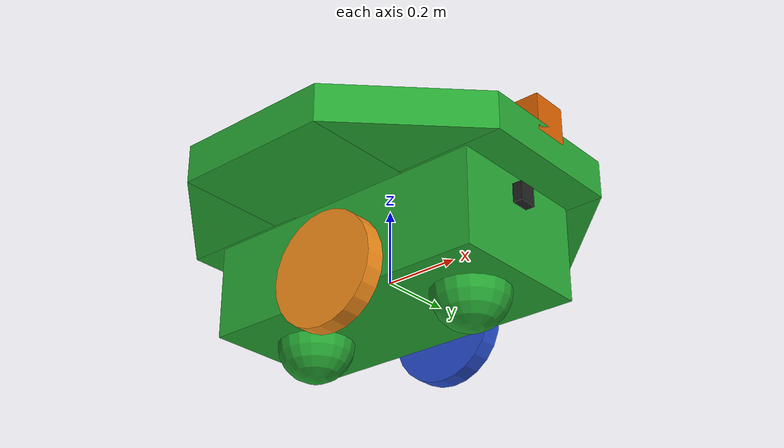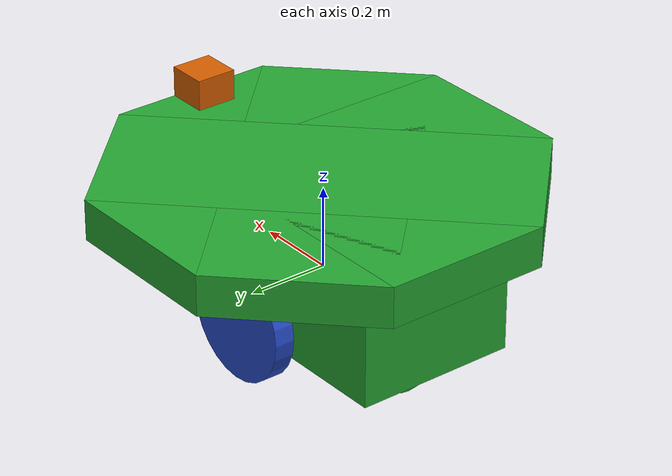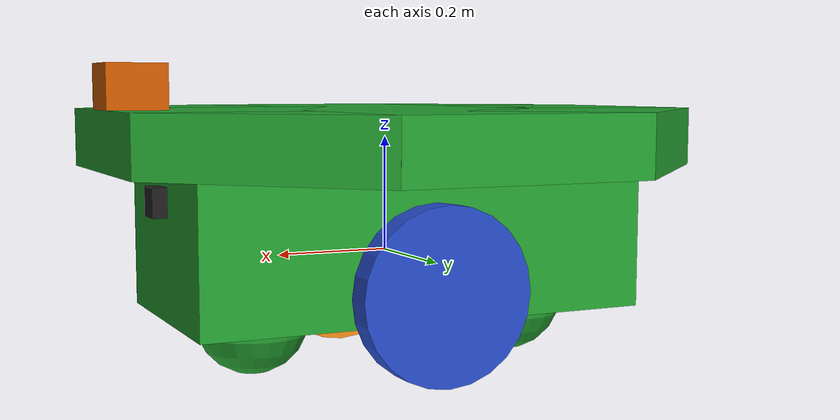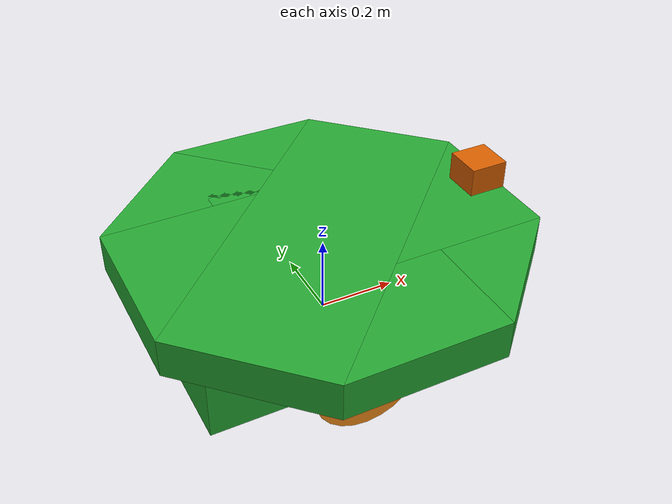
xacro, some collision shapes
<?xml version='1.0'?>

<robot name="my_robot" xmlns:xacro="http://www.ros.org/wiki/xacro">

  <xacro:include filename="$(find my_robot)/urdf/my_robot.gazebo" />

  <link name="robot_footprint"></link>

    <joint name="robot_footprint_joint" type="fixed">
      <origin xyz="0 0 0" rpy="0 0 0" />
      <parent link="robot_footprint"/>
      <child link="chassis" />
    </joint>

  <link name='chassis'>
    <pose>0 0 0.15 0 0 0</pose>

    <inertial>
      <mass value="15.0"/>
      <origin xyz="0.0 0 0" rpy=" 0 0 0"/>
      <inertia
          ixx="0.1" ixy="0" ixz="0"
          iyy="0.1" iyz="0"
          izz="0.1"
      />
    </inertial>

    <!-- can group these rects in a link -->
    <!-- creating an octagon using 4 rectangles -->
    <!-- lifting these rectangles up and adding a box under to connect to wheels (wheel height is .3) -->
      <!-- rectangle 1 -->
      <collision name='collision_box1'>
        <origin xyz="0 0 0.2" rpy=" 0 0 0"/>
        <geometry>
          <box size="1 0.4142 0.1"/>
        </geometry>
      </collision>

      <visual name='chassis_visual_box1'>
        <origin xyz="0 0 0.2" rpy=" 0 0 0"/>
        <geometry>
          <box size="1 0.4142 0.1"/>
        </geometry>
      </visual>

      <!-- rectangle 2 -->
      <collision name='collision_box2'>
        <origin xyz="0 0 0.2" rpy=" 0 0 0"/>
        <geometry>
          <box size="0.4142 1 0.1"/>
        </geometry>
      </collision>

      <visual name='chassis_visual_box2'>
        <origin xyz="0 0 0.2" rpy=" 0 0 0"/>
        <geometry>
          <box size="0.4142 1 0.1"/>
        </geometry>
      </visual>

      <!-- rectangle 3 -->
      <collision name='collision_box3'>
        <origin xyz="0 0 0.2" rpy="0 0 0.7854"/>
        <geometry>
          <box size="0.4142 1 0.1"/>
        </geometry>
      </collision>

      <visual name='chassis_visual_box3'>
        <origin xyz="0 0 0.2" rpy="0 0 0.7854"/>
        <geometry>
          <box size="0.4142 1 0.1"/>
        </geometry>
      </visual>

      <!-- rectangle 4 -->
      <collision name='collision_box4'>
        <origin xyz="0 0 0.2" rpy="0 0 -0.7854"/>
        <geometry>
          <box size="0.4142 1 0.1"/>
        </geometry>
      </collision>

      <visual name='chassis_visual_box4'>
        <origin xyz="0 0 0.2" rpy="0 0 -0.7854"/>
        <geometry>
          <box size="0.4142 1 0.1"/>
        </geometry>
      </visual>

	      <!-- wheel box -->
	      <collision name='collision_wheelbox'>
		<origin xyz="0 0 0.05" rpy="0 0 0"/>
		<geometry>
		  <box size="0.8 0.4 0.3"/>
		</geometry>
	      </collision>

	      <visual name='chassis_visual_wheelbox'>
		<origin xyz="0 0 0.05" rpy="0 0 0"/>
		<geometry>
		  <box size="0.8 0.4 0.3"/>
		</geometry>
	      </visual>

	<!-- casters to stop it falling over -->
	<!-- can't figure out putting weight on the wheels w/out robo tipover-->

	<collision name='back_caster_collision'>
	  <origin xyz="-0.25 0 -0.1" rpy="0 0 0"/>
	  <geometry>
	    <sphere radius="0.0999"/>
	  </geometry>
	</collision>

	<visual name='back_caster_visual'>
	  <origin xyz="-0.25 0 -0.1" rpy=" 0 0 0"/>
	  <geometry>
	    <sphere radius="0.1"/>
	  </geometry>
	</visual>

	<collision name='front_caster_collision'>
	  <origin xyz="0.25 0 -0.1" rpy=" 0 0 0"/>
	  <geometry>
	    <sphere radius="0.0999"/>
	  </geometry>
	</collision>

	<visual name='front_caster_visual'>
	  <origin xyz="0.25 0 -0.1" rpy=" 0 0 0"/>
	  <geometry>
	    <sphere radius="0.1"/>
	  </geometry>
	</visual>

  </link>
  <gazebo reference="chassis">
    <material>Gazebo/Green</material>
  </gazebo>

  <!-- adding wheels -->

  <link name='right_wheel'>
    <inertial name='right_wheel_inertia'>
      <mass value="5.0"/>
      <origin xyz="0 0 0" rpy=" 0 1.57 1.57"/>
      <inertia
          ixx="0.1" ixy="0" ixz="0"
          iyy="0.1" iyz="0"
          izz="0.1"
      />
    </inertial>

    <collision name='right_wheel_collision'>
      <origin xyz="0 0 0" rpy=" 0 1.57 1.57"/>
      <geometry>
        <cylinder length="0.05" radius="0.15"/>
      </geometry>
    </collision>

    <visual name='right_wheel_visual'>
      <origin xyz="0 0 0" rpy=" 0 1.57 1.57"/>
      <geometry>
        <cylinder length="0.05" radius="0.15"/>
      </geometry>
    </visual>
  </link>
  <gazebo reference="right_wheel">
    <material>Gazebo/Orange</material>
  </gazebo>

  <link name='left_wheel'>

    <inertial name='left_wheel_inertia'>
      <mass value="5.0"/>
      <origin xyz="0 0 0" rpy=" 0 1.57 1.57"/>
      <inertia
          ixx="0.1" ixy="0" ixz="0"
          iyy="0.1" iyz="0"
          izz="0.1"
      />
    </inertial>

    <collision name='left_wheel_collision'>
      <origin xyz="0 0 0" rpy=" 0 1.57 1.57"/>
      <geometry>
        <cylinder length="0.05" radius="0.15"/>
      </geometry>
    </collision>

    <visual name='left_wheel_visual'>
      <origin xyz="0 0 0" rpy=" 0 1.57 1.57"/>
      <geometry>
        <cylinder length="0.05" radius="0.15"/>
      </geometry>
    </visual>
  </link>
  <gazebo reference="left_wheel"> <material>Gazebo/Blue</material> </gazebo>

<!-- Sensors -->
  <link name='camera'>

    <inertial name='camera_inertia'>
      <mass value=".1"/>
      <origin xyz="0 0 0" rpy=" 0 0 0"/>
      <inertia
          ixx="1e-6" ixy="0" ixz="0"
          iyy="1e-6" iyz="0"
          izz="1e-6"
      />
    </inertial>

    <visual name='camera_visual'>
      <origin xyz="0 0 0" rpy="0 0 0 "/>
      <geometry>
        <box size="0.05 0.05 0.05"/>
      </geometry>
    </visual>

    <collision name='camera_collision'>
      <origin xyz="0 0 0" rpy="0 0 0 "/>
      <geometry>
        <box size="0.05 0.05 0.05"/>
      </geometry>
    </collision>
  </link>
  <gazebo reference="camera">
    <material>Gazebo/Black</material>
  </gazebo>

  <link name="hokuyo">
    <inertial name="hokuyo_inertial">
      <mass value="1e-5"/>
      <origin xyz="0 0 0" rpy="0 0 0"/>
      <inertia
          ixx="1e-6" ixy="0" ixz="0"
          iyy="1e-6" iyz="0"
          izz="1e-6"
      />
    </inertial>

    <visual name="hokuyo_visual">
      <origin xyz="0 0 0" rpy="0 0 0"/>
      <geometry>
        <mesh filename="package://my_robot/meshes/hokuyo.dae"/>
      </geometry>
    </visual>

    <collision name="hokuyo_collision">
      <origin xyz="0 0 0" rpy="0 0 0"/>
      <geometry>
        <box size="0.1 0.1 0.1"/>
      </geometry>
    </collision>
  </link>

  <!-- joints -->

  <joint type="continuous" name="left_wheel_hinge">
    <origin xyz="0 0.225 -0.05" rpy="0 0 0"/>
    <parent link="chassis"/>
    <child link="left_wheel"/>
    <axis xyz="0 1 0" rpy="0 0 0"/>
    <limit effort="10000" velocity="1000"/>
    <dynamics damping="1.0" friction="1.0"/>
  </joint>

  <joint type="continuous" name="right_wheel_hinge">
    <origin xyz="0 -0.225 -0.05" rpy="0 0 0"/>
    <parent link="chassis"/>
    <child link="right_wheel"/>
    <axis xyz="0 1 0" rpy="0 0 0"/>
    <limit effort="10000" velocity="1000"/>
    <dynamics damping="1.0" friction="1.0"/>
  </joint>

  <joint type="fixed" name="camera_joint">
    <origin xyz="0.4 0 0.1" rpy="0 0 0"/>
    <axis xyz="0 1 0" rpy="0 0 0"/>
    <parent link="chassis"/>
    <child link="camera"/>
  </joint>

  <joint type="fixed" name="hokuyo_joint">
    <origin xyz="0.45 0 0.275" rpy="0 0 0"/>
    <axis xyz="0 1 0"/>
    <parent link="chassis"/>
    <child link="hokuyo"/>
  </joint>

</robot>
